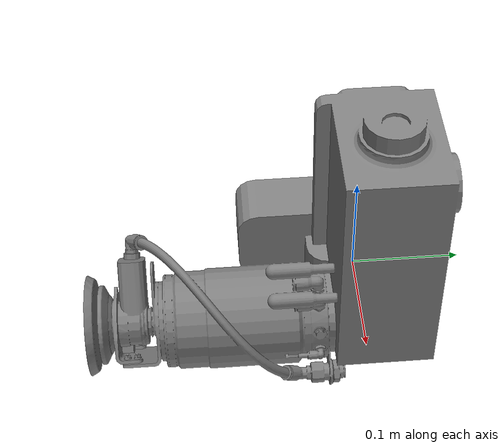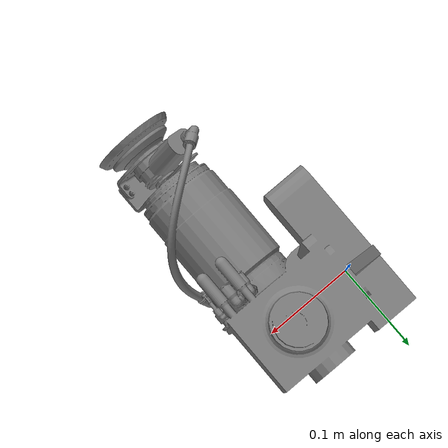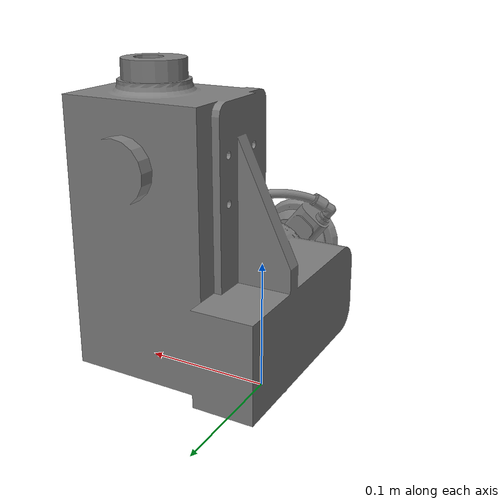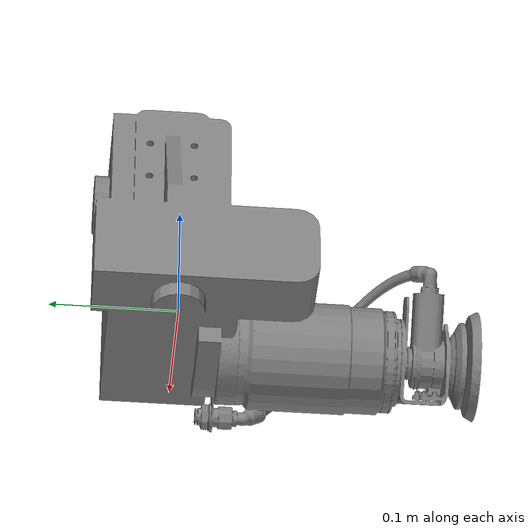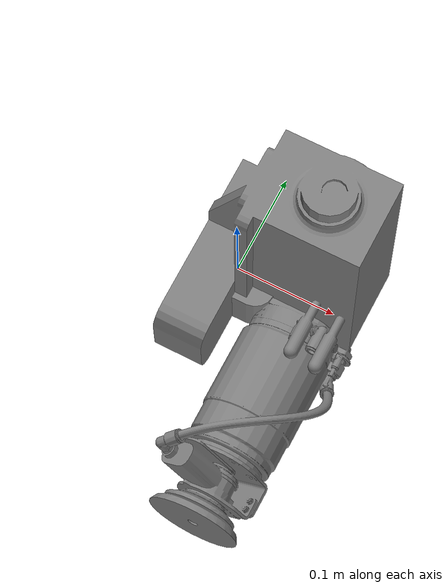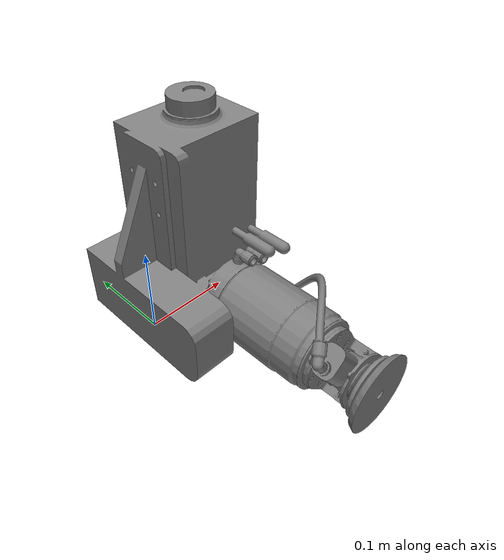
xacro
<?xml version="1.0"?>
<robot name="cam_sander_90">
  <link name="tool_origin">
    <visual>
      	<geometry>
          	<mesh filename="package://pct/data/meshes/cam_sander_90.stl"
                scale="1 1 1"/>
      	</geometry>
	  	<material name="ABS" >
          	<color rgba="0.5 0.5 0.5 1.0" />
         </material>
    	</visual>
  </link>
</robot>
